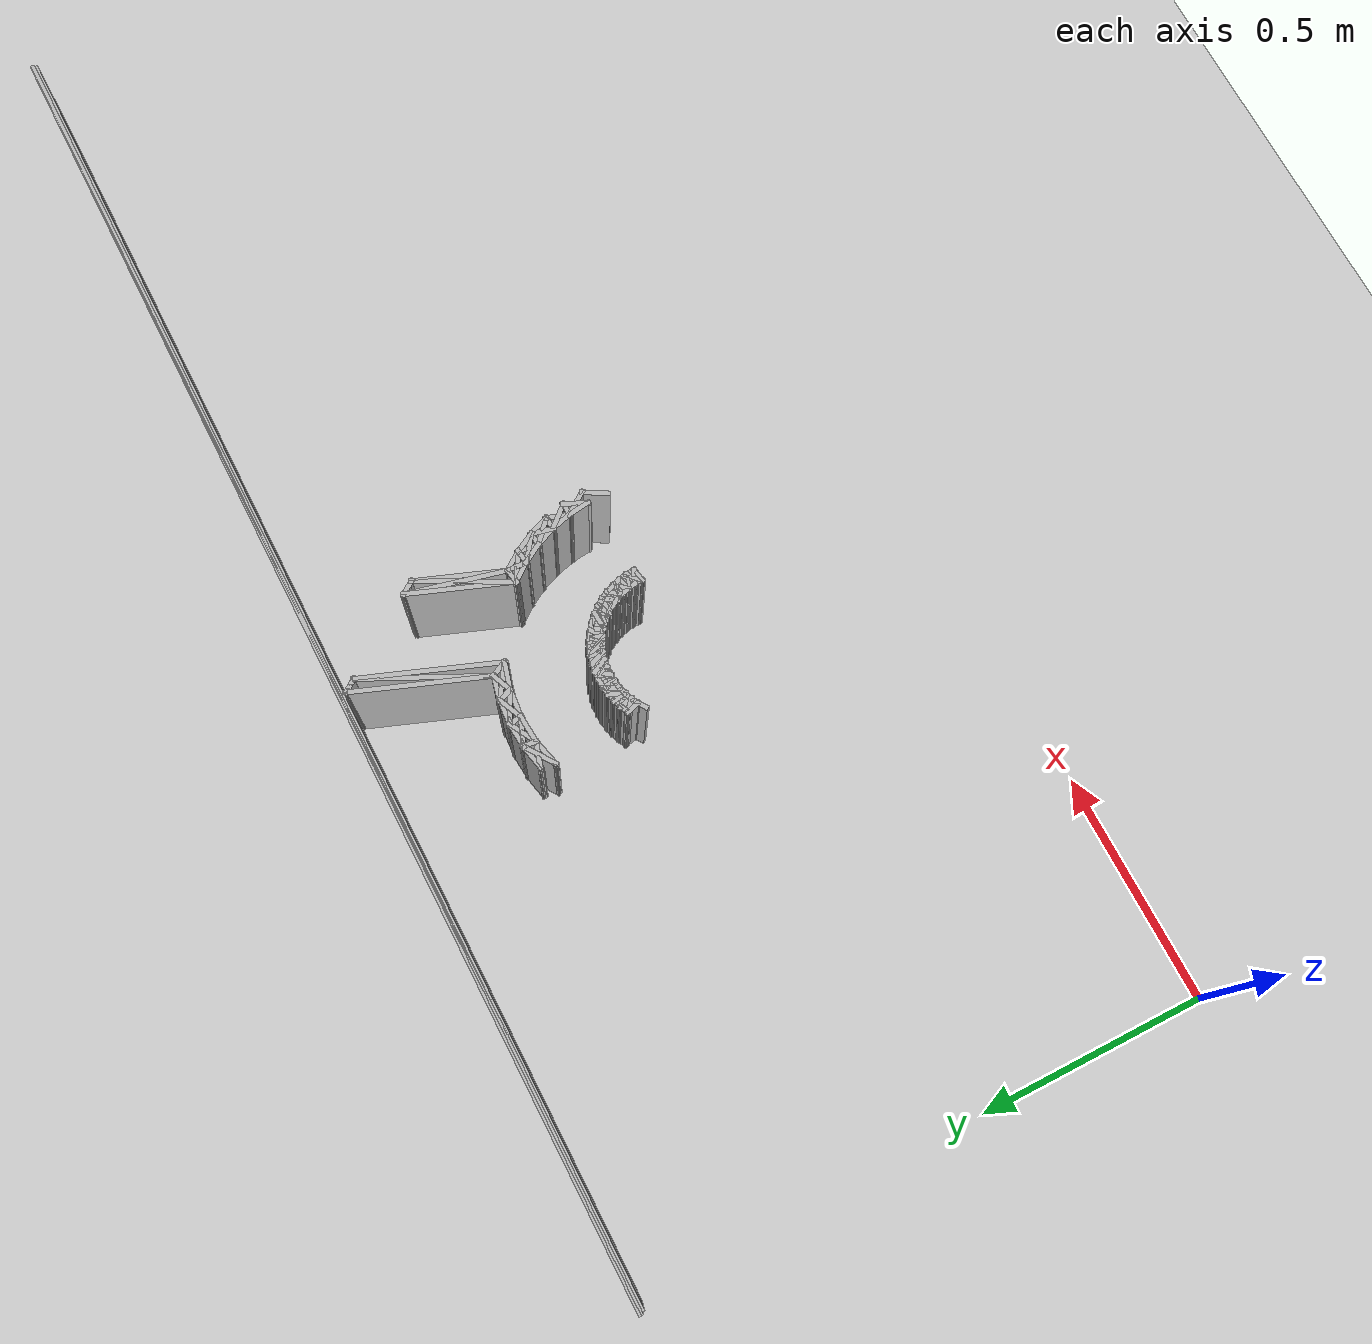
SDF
<sdf version="1.8">
 <world name="rosy_road">
  <model name="ground_plane">
   <link name="l">
    <visual name="v"><geometry><plane><normal>0 0 1</normal><size>4 2</size></plane></geometry></visual>
    <collision name="v"><geometry><plane><normal>0 0 1</normal><size>4 2</size></plane></geometry></collision>
   </link>
  </model>
  <model name="walls">
   <static>true</static>
   <link name="wall_005">
    <pose>1.4025 1.2701 0.150 0 0 -0.0018</pose>
    <visual name="v"><geometry><box><size>2.8171 0.0100 0.300</size></box></geometry></visual>
    <collision name="c"><geometry><box><size>2.8171 0.0100 0.300</size></box></geometry></collision>
   </link>
   <link name="wall_006">
    <pose>1.4050 1.2676 0.150 0 0 3.1416</pose>
    <visual name="v"><geometry><box><size>2.8121 0.0100 0.300</size></box></geometry></visual>
    <collision name="c"><geometry><box><size>2.8121 0.0100 0.300</size></box></geometry></collision>
   </link>
   <link name="wall_012">
    <pose>1.4050 1.2726 0.150 0 0 0.0000</pose>
    <visual name="v"><geometry><box><size>2.8221 0.0100 0.300</size></box></geometry></visual>
    <collision name="c"><geometry><box><size>2.8221 0.0100 0.300</size></box></geometry></collision>
   </link>
   <link name="wall_013">
    <pose>1.4075 1.2701 0.150 0 0 -3.1398</pose>
    <visual name="v"><geometry><box><size>2.8171 0.0100 0.300</size></box></geometry></visual>
    <collision name="c"><geometry><box><size>2.8171 0.0100 0.300</size></box></geometry></collision>
   </link>
   <link name="wall_062">
    <pose>0.9921 0.9805 0.150 0 0 -0.2941</pose>
    <visual name="v"><geometry><box><size>0.0624 0.0100 0.300</size></box></geometry></visual>
    <collision name="c"><geometry><box><size>0.0624 0.0100 0.300</size></box></geometry></collision>
   </link>
   <link name="wall_063">
    <pose>0.9885 0.9663 0.150 0 0 -2.8953</pose>
    <visual name="v"><geometry><box><size>0.0690 0.0100 0.300</size></box></geometry></visual>
    <collision name="c"><geometry><box><size>0.0690 0.0100 0.300</size></box></geometry></collision>
   </link>
   <link name="wall_064">
    <pose>0.9894 0.9790 0.150 0 0 0.6060</pose>
    <visual name="v"><geometry><box><size>0.0813 0.0100 0.300</size></box></geometry></visual>
    <collision name="c"><geometry><box><size>0.0813 0.0100 0.300</size></box></geometry></collision>
   </link>
   <link name="wall_065">
    <pose>0.9929 0.9933 0.150 0 0 -2.9246</pose>
    <visual name="v"><geometry><box><size>0.0631 0.0100 0.300</size></box></geometry></visual>
    <collision name="c"><geometry><box><size>0.0631 0.0100 0.300</size></box></geometry></collision>
   </link>
   <link name="wall_071">
    <pose>1.0171 0.9860 0.150 0 0 1.5045</pose>
    <visual name="v"><geometry><box><size>0.0377 0.0100 0.300</size></box></geometry></visual>
    <collision name="c"><geometry><box><size>0.0377 0.0100 0.300</size></box></geometry></collision>
   </link>
   <link name="wall_072">
    <pose>1.0434 1.0007 0.150 0 0 0.0723</pose>
    <visual name="v"><geometry><box><size>0.0632 0.0100 0.300</size></box></geometry></visual>
    <collision name="c"><geometry><box><size>0.0632 0.0100 0.300</size></box></geometry></collision>
   </link>
   <link name="wall_073">
    <pose>1.0426 0.9879 0.150 0 0 -2.6350</pose>
    <visual name="v"><geometry><box><size>0.0724 0.0100 0.300</size></box></geometry></visual>
    <collision name="c"><geometry><box><size>0.0724 0.0100 0.300</size></box></geometry></collision>
   </link>
   <link name="wall_074">
    <pose>1.0447 0.9754 0.150 0 0 0.0753</pose>
    <visual name="v"><geometry><box><size>0.0692 0.0100 0.300</size></box></geometry></visual>
    <collision name="c"><geometry><box><size>0.0692 0.0100 0.300</size></box></geometry></collision>
   </link>
   <link name="wall_075">
    <pose>1.0455 0.9881 0.150 0 0 2.7739</pose>
    <visual name="v"><geometry><box><size>0.0713 0.0100 0.300</size></box></geometry></visual>
    <collision name="c"><geometry><box><size>0.0713 0.0100 0.300</size></box></geometry></collision>
   </link>
   <link name="wall_081">
    <pose>1.0711 0.9900 0.150 0 0 -1.4044</pose>
    <visual name="v"><geometry><box><size>0.0374 0.0100 0.300</size></box></geometry></visual>
    <collision name="c"><geometry><box><size>0.0374 0.0100 0.300</size></box></geometry></collision>
   </link>
   <link name="wall_082">
    <pose>1.0966 0.9883 0.150 0 0 0.4324</pose>
    <visual name="v"><geometry><box><size>0.0635 0.0100 0.300</size></box></geometry></visual>
    <collision name="c"><geometry><box><size>0.0635 0.0100 0.300</size></box></geometry></collision>
   </link>
   <link name="wall_083">
    <pose>1.0945 1.0008 0.150 0 0 3.0750</pose>
    <visual name="v"><geometry><box><size>0.0631 0.0100 0.300</size></box></geometry></visual>
    <collision name="c"><geometry><box><size>0.0631 0.0100 0.300</size></box></geometry></collision>
   </link>
   <link name="wall_084">
    <pose>1.0995 0.9873 0.150 0 0 -0.4623</pose>
    <visual name="v"><geometry><box><size>0.0802 0.0100 0.300</size></box></geometry></visual>
    <collision name="c"><geometry><box><size>0.0802 0.0100 0.300</size></box></geometry></collision>
   </link>
   <link name="wall_085">
    <pose>1.1016 0.9748 0.150 0 0 3.0468</pose>
    <visual name="v"><geometry><box><size>0.0691 0.0100 0.300</size></box></geometry></visual>
    <collision name="c"><geometry><box><size>0.0691 0.0100 0.300</size></box></geometry></collision>
   </link>
   <link name="wall_091">
    <pose>1.1250 0.9856 0.150 0 0 -1.2161</pose>
    <visual name="v"><geometry><box><size>0.0408 0.0100 0.300</size></box></geometry></visual>
    <collision name="c"><geometry><box><size>0.0408 0.0100 0.300</size></box></geometry></collision>
   </link>
   <link name="wall_092">
    <pose>1.1501 0.9802 0.150 0 0 0.3861</pose>
    <visual name="v"><geometry><box><size>0.0553 0.0100 0.300</size></box></geometry></visual>
    <collision name="c"><geometry><box><size>0.0553 0.0100 0.300</size></box></geometry></collision>
   </link>
   <link name="wall_093">
    <pose>1.1450 0.9938 0.150 0 0 2.9312</pose>
    <visual name="v"><geometry><box><size>0.0632 0.0100 0.300</size></box></geometry></visual>
    <collision name="c"><geometry><box><size>0.0632 0.0100 0.300</size></box></geometry></collision>
   </link>
   <link name="wall_094">
    <pose>1.1525 0.9782 0.150 0 0 -0.5719</pose>
    <visual name="v"><geometry><box><size>0.0894 0.0100 0.300</size></box></geometry></visual>
    <collision name="c"><geometry><box><size>0.0894 0.0100 0.300</size></box></geometry></collision>
   </link>
   <link name="wall_095">
    <pose>1.1575 0.9647 0.150 0 0 2.8775</pose>
    <visual name="v"><geometry><box><size>0.0691 0.0100 0.300</size></box></geometry></visual>
    <collision name="c"><geometry><box><size>0.0691 0.0100 0.300</size></box></geometry></collision>
   </link>
   <link name="wall_101">
    <pose>1.1776 0.9728 0.150 0 0 -1.1227</pose>
    <visual name="v"><geometry><box><size>0.0466 0.0100 0.300</size></box></geometry></visual>
    <collision name="c"><geometry><box><size>0.0466 0.0100 0.300</size></box></geometry></collision>
   </link>
   <link name="wall_102">
    <pose>1.2363 1.0949 0.150 0 0 1.2151</pose>
    <visual name="v"><geometry><box><size>0.3058 0.0100 0.300</size></box></geometry></visual>
    <collision name="c"><geometry><box><size>0.3058 0.0100 0.300</size></box></geometry></collision>
   </link>
   <link name="wall_103">
    <pose>1.2288 1.1105 0.150 0 0 -2.0186</pose>
    <visual name="v"><geometry><box><size>0.2829 0.0100 0.300</size></box></geometry></visual>
    <collision name="c"><geometry><box><size>0.2829 0.0100 0.300</size></box></geometry></collision>
   </link>
   <link name="wall_104">
    <pose>1.2200 1.1230 0.150 0 0 1.2153</pose>
    <visual name="v"><geometry><box><size>0.2990 0.0100 0.300</size></box></geometry></visual>
    <collision name="c"><geometry><box><size>0.2990 0.0100 0.300</size></box></geometry></collision>
   </link>
   <link name="wall_105">
    <pose>1.2787 1.2450 0.150 0 0 -0.9609</pose>
    <visual name="v"><geometry><box><size>0.0424 0.0100 0.300</size></box></geometry></visual>
    <collision name="c"><geometry><box><size>0.0424 0.0100 0.300</size></box></geometry></collision>
   </link>
   <link name="wall_110">
    <pose>1.2787 1.2450 0.150 0 0 2.1807</pose>
    <visual name="v"><geometry><box><size>0.0424 0.0100 0.300</size></box></geometry></visual>
    <collision name="c"><geometry><box><size>0.0424 0.0100 0.300</size></box></geometry></collision>
   </link>
   <link name="wall_499">
    <pose>0.9877 0.7586 0.150 0 0 0.6159</pose>
    <visual name="v"><geometry><box><size>0.0279 0.0100 0.300</size></box></geometry></visual>
    <collision name="c"><geometry><box><size>0.0279 0.0100 0.300</size></box></geometry></collision>
   </link>
   <link name="wall_502">
    <pose>0.9909 0.7758 0.150 0 0 -1.3099</pose>
    <visual name="v"><geometry><box><size>0.0380 0.0100 0.300</size></box></geometry></visual>
    <collision name="c"><geometry><box><size>0.0380 0.0100 0.300</size></box></geometry></collision>
   </link>
   <link name="wall_503">
    <pose>0.9986 0.7796 0.150 0 0 1.3087</pose>
    <visual name="v"><geometry><box><size>0.0460 0.0100 0.300</size></box></geometry></visual>
    <collision name="c"><geometry><box><size>0.0460 0.0100 0.300</size></box></geometry></collision>
   </link>
   <link name="wall_504">
    <pose>0.9952 0.7922 0.150 0 0 -2.6805</pose>
    <visual name="v"><geometry><box><size>0.0293 0.0100 0.300</size></box></geometry></visual>
    <collision name="c"><geometry><box><size>0.0293 0.0100 0.300</size></box></geometry></collision>
   </link>
   <link name="wall_505">
    <pose>0.9979 0.7796 0.150 0 0 -0.6990</pose>
    <visual name="v"><geometry><box><size>0.0390 0.0100 0.300</size></box></geometry></visual>
    <collision name="c"><geometry><box><size>0.0390 0.0100 0.300</size></box></geometry></collision>
   </link>
   <link name="wall_506">
    <pose>1.0012 0.7671 0.150 0 0 -2.6387</pose>
    <visual name="v"><geometry><box><size>0.0280 0.0100 0.300</size></box></geometry></visual>
    <collision name="c"><geometry><box><size>0.0280 0.0100 0.300</size></box></geometry></collision>
   </link>
   <link name="wall_517">
    <pose>1.0056 0.7835 0.150 0 0 -1.3665</pose>
    <visual name="v"><geometry><box><size>0.0376 0.0100 0.300</size></box></geometry></visual>
    <collision name="c"><geometry><box><size>0.0376 0.0100 0.300</size></box></geometry></collision>
   </link>
   <link name="wall_518">
    <pose>1.0137 0.7865 0.150 0 0 1.2347</pose>
    <visual name="v"><geometry><box><size>0.0450 0.0100 0.300</size></box></geometry></visual>
    <collision name="c"><geometry><box><size>0.0450 0.0100 0.300</size></box></geometry></collision>
   </link>
   <link name="wall_519">
    <pose>1.0111 0.7990 0.150 0 0 -2.7794</pose>
    <visual name="v"><geometry><box><size>0.0292 0.0100 0.300</size></box></geometry></visual>
    <collision name="c"><geometry><box><size>0.0292 0.0100 0.300</size></box></geometry></collision>
   </link>
   <link name="wall_520">
    <pose>1.0130 0.7865 0.150 0 0 -0.7571</pose>
    <visual name="v"><geometry><box><size>0.0395 0.0100 0.300</size></box></geometry></visual>
    <collision name="c"><geometry><box><size>0.0395 0.0100 0.300</size></box></geometry></collision>
   </link>
   <link name="wall_521">
    <pose>1.0156 0.7740 0.150 0 0 -2.7449</pose>
    <visual name="v"><geometry><box><size>0.0280 0.0100 0.300</size></box></geometry></visual>
    <collision name="c"><geometry><box><size>0.0280 0.0100 0.300</size></box></geometry></collision>
   </link>
   <link name="wall_527">
    <pose>1.0211 0.7896 0.150 0 0 -1.4160</pose>
    <visual name="v"><geometry><box><size>0.0373 0.0100 0.300</size></box></geometry></visual>
    <collision name="c"><geometry><box><size>0.0373 0.0100 0.300</size></box></geometry></collision>
   </link>
   <link name="wall_528">
    <pose>1.0294 0.7918 0.150 0 0 1.1602</pose>
    <visual name="v"><geometry><box><size>0.0441 0.0100 0.300</size></box></geometry></visual>
    <collision name="c"><geometry><box><size>0.0441 0.0100 0.300</size></box></geometry></collision>
   </link>
   <link name="wall_529">
    <pose>1.0274 0.8043 0.150 0 0 -2.8840</pose>
    <visual name="v"><geometry><box><size>0.0293 0.0100 0.300</size></box></geometry></visual>
    <collision name="c"><geometry><box><size>0.0293 0.0100 0.300</size></box></geometry></collision>
   </link>
   <link name="wall_530">
    <pose>1.0287 0.7918 0.150 0 0 -0.8206</pose>
    <visual name="v"><geometry><box><size>0.0402 0.0100 0.300</size></box></geometry></visual>
    <collision name="c"><geometry><box><size>0.0402 0.0100 0.300</size></box></geometry></collision>
   </link>
   <link name="wall_531">
    <pose>1.0307 0.7793 0.150 0 0 -2.8616</pose>
    <visual name="v"><geometry><box><size>0.0279 0.0100 0.300</size></box></geometry></visual>
    <collision name="c"><geometry><box><size>0.0279 0.0100 0.300</size></box></geometry></collision>
   </link>
   <link name="wall_537">
    <pose>1.0371 0.7940 0.150 0 0 -1.4711</pose>
    <visual name="v"><geometry><box><size>0.0371 0.0100 0.300</size></box></geometry></visual>
    <collision name="c"><geometry><box><size>0.0371 0.0100 0.300</size></box></geometry></collision>
   </link>
   <link name="wall_538">
    <pose>1.0455 0.7954 0.150 0 0 1.0886</pose>
    <visual name="v"><geometry><box><size>0.0433 0.0100 0.300</size></box></geometry></visual>
    <collision name="c"><geometry><box><size>0.0433 0.0100 0.300</size></box></geometry></collision>
   </link>
   <link name="wall_539">
    <pose>1.0443 0.8079 0.150 0 0 -2.9841</pose>
    <visual name="v"><geometry><box><size>0.0292 0.0100 0.300</size></box></geometry></visual>
    <collision name="c"><geometry><box><size>0.0292 0.0100 0.300</size></box></geometry></collision>
   </link>
   <link name="wall_540">
    <pose>1.0449 0.7954 0.150 0 0 -0.8836</pose>
    <visual name="v"><geometry><box><size>0.0408 0.0100 0.300</size></box></geometry></visual>
    <collision name="c"><geometry><box><size>0.0408 0.0100 0.300</size></box></geometry></collision>
   </link>
   <link name="wall_541">
    <pose>1.0462 0.7829 0.150 0 0 -2.9723</pose>
    <visual name="v"><geometry><box><size>0.0280 0.0100 0.300</size></box></geometry></visual>
    <collision name="c"><geometry><box><size>0.0280 0.0100 0.300</size></box></geometry></collision>
   </link>
   <link name="wall_551">
    <pose>1.0534 0.7967 0.150 0 0 -1.5188</pose>
    <visual name="v"><geometry><box><size>0.0370 0.0100 0.300</size></box></geometry></visual>
    <collision name="c"><geometry><box><size>0.0370 0.0100 0.300</size></box></geometry></collision>
   </link>
   <link name="wall_552">
    <pose>1.0621 0.7846 0.150 0 0 0.0500</pose>
    <visual name="v"><geometry><box><size>0.0280 0.0100 0.300</size></box></geometry></visual>
    <collision name="c"><geometry><box><size>0.0280 0.0100 0.300</size></box></geometry></collision>
   </link>
   <link name="wall_553">
    <pose>1.0614 0.7971 0.150 0 0 2.1914</pose>
    <visual name="v"><geometry><box><size>0.0417 0.0100 0.300</size></box></geometry></visual>
    <collision name="c"><geometry><box><size>0.0417 0.0100 0.300</size></box></geometry></collision>
   </link>
   <link name="wall_554">
    <pose>1.0614 0.8096 0.150 0 0 0.0462</pose>
    <visual name="v"><geometry><box><size>0.0293 0.0100 0.300</size></box></geometry></visual>
    <collision name="c"><geometry><box><size>0.0293 0.0100 0.300</size></box></geometry></collision>
   </link>
   <link name="wall_555">
    <pose>1.0621 0.7971 0.150 0 0 -2.1259</pose>
    <visual name="v"><geometry><box><size>0.0424 0.0100 0.300</size></box></geometry></visual>
    <collision name="c"><geometry><box><size>0.0424 0.0100 0.300</size></box></geometry></collision>
   </link>
   <link name="wall_564">
    <pose>1.0701 0.7975 0.150 0 0 1.5708</pose>
    <visual name="v"><geometry><box><size>0.0370 0.0100 0.300</size></box></geometry></visual>
    <collision name="c"><geometry><box><size>0.0370 0.0100 0.300</size></box></geometry></collision>
   </link>
   <link name="wall_565">
    <pose>1.0780 0.7971 0.150 0 0 -1.0185</pose>
    <visual name="v"><geometry><box><size>0.0423 0.0100 0.300</size></box></geometry></visual>
    <collision name="c"><geometry><box><size>0.0423 0.0100 0.300</size></box></geometry></collision>
   </link>
   <link name="wall_566">
    <pose>1.0780 0.7846 0.150 0 0 3.0913</pose>
    <visual name="v"><geometry><box><size>0.0279 0.0100 0.300</size></box></geometry></visual>
    <collision name="c"><geometry><box><size>0.0279 0.0100 0.300</size></box></geometry></collision>
   </link>
   <link name="wall_567">
    <pose>1.0787 0.7971 0.150 0 0 0.9529</pose>
    <visual name="v"><geometry><box><size>0.0417 0.0100 0.300</size></box></geometry></visual>
    <collision name="c"><geometry><box><size>0.0417 0.0100 0.300</size></box></geometry></collision>
   </link>
   <link name="wall_568">
    <pose>1.0787 0.8096 0.150 0 0 3.0951</pose>
    <visual name="v"><geometry><box><size>0.0292 0.0100 0.300</size></box></geometry></visual>
    <collision name="c"><geometry><box><size>0.0292 0.0100 0.300</size></box></geometry></collision>
   </link>
   <link name="wall_569">
    <pose>1.0867 0.7967 0.150 0 0 1.5188</pose>
    <visual name="v"><geometry><box><size>0.0370 0.0100 0.300</size></box></geometry></visual>
    <collision name="c"><geometry><box><size>0.0370 0.0100 0.300</size></box></geometry></collision>
   </link>
   <link name="wall_570">
    <pose>1.0945 0.7954 0.150 0 0 -1.0886</pose>
    <visual name="v"><geometry><box><size>0.0433 0.0100 0.300</size></box></geometry></visual>
    <collision name="c"><geometry><box><size>0.0433 0.0100 0.300</size></box></geometry></collision>
   </link>
   <link name="wall_571">
    <pose>1.0939 0.7829 0.150 0 0 2.9723</pose>
    <visual name="v"><geometry><box><size>0.0280 0.0100 0.300</size></box></geometry></visual>
    <collision name="c"><geometry><box><size>0.0280 0.0100 0.300</size></box></geometry></collision>
   </link>
   <link name="wall_572">
    <pose>1.0952 0.7954 0.150 0 0 0.8836</pose>
    <visual name="v"><geometry><box><size>0.0408 0.0100 0.300</size></box></geometry></visual>
    <collision name="c"><geometry><box><size>0.0408 0.0100 0.300</size></box></geometry></collision>
   </link>
   <link name="wall_573">
    <pose>1.0958 0.8079 0.150 0 0 2.9841</pose>
    <visual name="v"><geometry><box><size>0.0292 0.0100 0.300</size></box></geometry></visual>
    <collision name="c"><geometry><box><size>0.0292 0.0100 0.300</size></box></geometry></collision>
   </link>
   <link name="wall_579">
    <pose>1.1030 0.7940 0.150 0 0 1.4711</pose>
    <visual name="v"><geometry><box><size>0.0371 0.0100 0.300</size></box></geometry></visual>
    <collision name="c"><geometry><box><size>0.0371 0.0100 0.300</size></box></geometry></collision>
   </link>
   <link name="wall_580">
    <pose>1.1107 0.7918 0.150 0 0 -1.1602</pose>
    <visual name="v"><geometry><box><size>0.0441 0.0100 0.300</size></box></geometry></visual>
    <collision name="c"><geometry><box><size>0.0441 0.0100 0.300</size></box></geometry></collision>
   </link>
   <link name="wall_581">
    <pose>1.1094 0.7793 0.150 0 0 2.8616</pose>
    <visual name="v"><geometry><box><size>0.0279 0.0100 0.300</size></box></geometry></visual>
    <collision name="c"><geometry><box><size>0.0279 0.0100 0.300</size></box></geometry></collision>
   </link>
   <link name="wall_582">
    <pose>1.1114 0.7918 0.150 0 0 0.8206</pose>
    <visual name="v"><geometry><box><size>0.0402 0.0100 0.300</size></box></geometry></visual>
    <collision name="c"><geometry><box><size>0.0402 0.0100 0.300</size></box></geometry></collision>
   </link>
   <link name="wall_583">
    <pose>1.1127 0.8043 0.150 0 0 2.8840</pose>
    <visual name="v"><geometry><box><size>0.0293 0.0100 0.300</size></box></geometry></visual>
    <collision name="c"><geometry><box><size>0.0293 0.0100 0.300</size></box></geometry></collision>
   </link>
   <link name="wall_589">
    <pose>1.1190 0.7896 0.150 0 0 1.4160</pose>
    <visual name="v"><geometry><box><size>0.0373 0.0100 0.300</size></box></geometry></visual>
    <collision name="c"><geometry><box><size>0.0373 0.0100 0.300</size></box></geometry></collision>
   </link>
   <link name="wall_590">
    <pose>1.1264 0.7865 0.150 0 0 -1.2347</pose>
    <visual name="v"><geometry><box><size>0.0450 0.0100 0.300</size></box></geometry></visual>
    <collision name="c"><geometry><box><size>0.0450 0.0100 0.300</size></box></geometry></collision>
   </link>
   <link name="wall_591">
    <pose>1.1245 0.7740 0.150 0 0 2.7449</pose>
    <visual name="v"><geometry><box><size>0.0280 0.0100 0.300</size></box></geometry></visual>
    <collision name="c"><geometry><box><size>0.0280 0.0100 0.300</size></box></geometry></collision>
   </link>
   <link name="wall_592">
    <pose>1.1271 0.7865 0.150 0 0 0.7571</pose>
    <visual name="v"><geometry><box><size>0.0395 0.0100 0.300</size></box></geometry></visual>
    <collision name="c"><geometry><box><size>0.0395 0.0100 0.300</size></box></geometry></collision>
   </link>
   <link name="wall_593">
    <pose>1.1290 0.7990 0.150 0 0 2.7794</pose>
    <visual name="v"><geometry><box><size>0.0292 0.0100 0.300</size></box></geometry></visual>
    <collision name="c"><geometry><box><size>0.0292 0.0100 0.300</size></box></geometry></collision>
   </link>
   <link name="wall_599">
    <pose>1.1345 0.7835 0.150 0 0 1.3665</pose>
    <visual name="v"><geometry><box><size>0.0376 0.0100 0.300</size></box></geometry></visual>
    <collision name="c"><geometry><box><size>0.0376 0.0100 0.300</size></box></geometry></collision>
   </link>
   <link name="wall_600">
    <pose>1.1415 0.7796 0.150 0 0 -1.3087</pose>
    <visual name="v"><geometry><box><size>0.0460 0.0100 0.300</size></box></geometry></visual>
    <collision name="c"><geometry><box><size>0.0460 0.0100 0.300</size></box></geometry></collision>
   </link>
   <link name="wall_601">
    <pose>1.1389 0.7671 0.150 0 0 2.6387</pose>
    <visual name="v"><geometry><box><size>0.0280 0.0100 0.300</size></box></geometry></visual>
    <collision name="c"><geometry><box><size>0.0280 0.0100 0.300</size></box></geometry></collision>
   </link>
   <link name="wall_602">
    <pose>1.1422 0.7796 0.150 0 0 0.6990</pose>
    <visual name="v"><geometry><box><size>0.0390 0.0100 0.300</size></box></geometry></visual>
    <collision name="c"><geometry><box><size>0.0390 0.0100 0.300</size></box></geometry></collision>
   </link>
   <link name="wall_603">
    <pose>1.1448 0.7922 0.150 0 0 2.6805</pose>
    <visual name="v"><geometry><box><size>0.0293 0.0100 0.300</size></box></geometry></visual>
    <collision name="c"><geometry><box><size>0.0293 0.0100 0.300</size></box></geometry></collision>
   </link>
   <link name="wall_609">
    <pose>1.1493 0.7758 0.150 0 0 1.3099</pose>
    <visual name="v"><geometry><box><size>0.0380 0.0100 0.300</size></box></geometry></visual>
    <collision name="c"><geometry><box><size>0.0380 0.0100 0.300</size></box></geometry></collision>
   </link>
   <link name="wall_610">
    <pose>1.1598 0.7837 0.150 0 0 -0.5654</pose>
    <visual name="v"><geometry><box><size>0.0292 0.0100 0.300</size></box></geometry></visual>
    <collision name="c"><geometry><box><size>0.0292 0.0100 0.300</size></box></geometry></collision>
   </link>
   <link name="wall_611">
    <pose>1.1565 0.7712 0.150 0 0 -2.4981</pose>
    <visual name="v"><geometry><box><size>0.0385 0.0100 0.300</size></box></geometry></visual>
    <collision name="c"><geometry><box><size>0.0385 0.0100 0.300</size></box></geometry></collision>
   </link>
   <link name="wall_612">
    <pose>1.1524 0.7586 0.150 0 0 -0.6159</pose>
    <visual name="v"><geometry><box><size>0.0279 0.0100 0.300</size></box></geometry></visual>
    <collision name="c"><geometry><box><size>0.0279 0.0100 0.300</size></box></geometry></collision>
   </link>
   <link name="wall_613">
    <pose>1.1630 0.7665 0.150 0 0 1.2550</pose>
    <visual name="v"><geometry><box><size>0.0384 0.0100 0.300</size></box></geometry></visual>
    <collision name="c"><geometry><box><size>0.0384 0.0100 0.300</size></box></geometry></collision>
   </link>
   <link name="wall_614">
    <pose>1.1738 0.7738 0.150 0 0 -0.6702</pose>
    <visual name="v"><geometry><box><size>0.0292 0.0100 0.300</size></box></geometry></visual>
    <collision name="c"><geometry><box><size>0.0292 0.0100 0.300</size></box></geometry></collision>
   </link>
   <link name="wall_615">
    <pose>1.1698 0.7612 0.150 0 0 -2.5557</pose>
    <visual name="v"><geometry><box><size>0.0380 0.0100 0.300</size></box></geometry></visual>
    <collision name="c"><geometry><box><size>0.0380 0.0100 0.300</size></box></geometry></collision>
   </link>
   <link name="wall_616">
    <pose>1.1648 0.7486 0.150 0 0 -0.7324</pose>
    <visual name="v"><geometry><box><size>0.0280 0.0100 0.300</size></box></geometry></visual>
    <collision name="c"><geometry><box><size>0.0280 0.0100 0.300</size></box></geometry></collision>
   </link>
   <link name="wall_617">
    <pose>1.1757 0.7558 0.150 0 0 1.1986</pose>
    <visual name="v"><geometry><box><size>0.0389 0.0100 0.300</size></box></geometry></visual>
    <collision name="c"><geometry><box><size>0.0389 0.0100 0.300</size></box></geometry></collision>
   </link>
   <link name="wall_618">
    <pose>1.1868 0.7623 0.150 0 0 -0.7732</pose>
    <visual name="v"><geometry><box><size>0.0293 0.0100 0.300</size></box></geometry></visual>
    <collision name="c"><geometry><box><size>0.0293 0.0100 0.300</size></box></geometry></collision>
   </link>
   <link name="wall_619">
    <pose>1.1760 0.7551 0.150 0 0 -3.0742</pose>
    <visual name="v"><geometry><box><size>0.0462 0.0100 0.300</size></box></geometry></visual>
    <collision name="c"><geometry><box><size>0.0462 0.0100 0.300</size></box></geometry></collision>
   </link>
   <link name="wall_630">
    <pose>1.1762 0.7373 0.150 0 0 -0.8384</pose>
    <visual name="v"><geometry><box><size>0.0280 0.0100 0.300</size></box></geometry></visual>
    <collision name="c"><geometry><box><size>0.0280 0.0100 0.300</size></box></geometry></collision>
   </link>
   <link name="wall_631">
    <pose>1.1872 0.7438 0.150 0 0 1.1381</pose>
    <visual name="v"><geometry><box><size>0.0394 0.0100 0.300</size></box></geometry></visual>
    <collision name="c"><geometry><box><size>0.0394 0.0100 0.300</size></box></geometry></collision>
   </link>
   <link name="wall_632">
    <pose>1.1819 0.7498 0.150 0 0 -2.6118</pose>
    <visual name="v"><geometry><box><size>0.0377 0.0100 0.300</size></box></geometry></visual>
    <collision name="c"><geometry><box><size>0.0377 0.0100 0.300</size></box></geometry></collision>
   </link>
   <link name="wall_633">
    <pose>1.1874 0.7432 0.150 0 0 -0.0060</pose>
    <visual name="v"><geometry><box><size>0.0452 0.0100 0.300</size></box></geometry></visual>
    <collision name="c"><geometry><box><size>0.0452 0.0100 0.300</size></box></geometry></collision>
   </link>
   <link name="wall_634">
    <pose>1.1985 0.7497 0.150 0 0 2.2655</pose>
    <visual name="v"><geometry><box><size>0.0292 0.0100 0.300</size></box></geometry></visual>
    <collision name="c"><geometry><box><size>0.0292 0.0100 0.300</size></box></geometry></collision>
   </link>
   <link name="wall_640">
    <pose>1.1861 0.7249 0.150 0 0 -0.9549</pose>
    <visual name="v"><geometry><box><size>0.0279 0.0100 0.300</size></box></geometry></visual>
    <collision name="c"><geometry><box><size>0.0279 0.0100 0.300</size></box></geometry></collision>
   </link>
   <link name="wall_641">
    <pose>1.1973 0.7308 0.150 0 0 1.0769</pose>
    <visual name="v"><geometry><box><size>0.0401 0.0100 0.300</size></box></geometry></visual>
    <collision name="c"><geometry><box><size>0.0401 0.0100 0.300</size></box></geometry></collision>
   </link>
   <link name="wall_642">
    <pose>1.1927 0.7372 0.150 0 0 -2.6621</pose>
    <visual name="v"><geometry><box><size>0.0374 0.0100 0.300</size></box></geometry></visual>
    <collision name="c"><geometry><box><size>0.0374 0.0100 0.300</size></box></geometry></collision>
   </link>
   <link name="wall_643">
    <pose>1.1976 0.7301 0.150 0 0 -0.0806</pose>
    <visual name="v"><geometry><box><size>0.0443 0.0100 0.300</size></box></geometry></visual>
    <collision name="c"><geometry><box><size>0.0443 0.0100 0.300</size></box></geometry></collision>
   </link>
   <link name="wall_644">
    <pose>1.2088 0.7359 0.150 0 0 2.1668</pose>
    <visual name="v"><geometry><box><size>0.0293 0.0100 0.300</size></box></geometry></visual>
    <collision name="c"><geometry><box><size>0.0293 0.0100 0.300</size></box></geometry></collision>
   </link>
   <link name="wall_650">
    <pose>1.1946 0.7114 0.150 0 0 -1.0680</pose>
    <visual name="v"><geometry><box><size>0.0280 0.0100 0.300</size></box></geometry></visual>
    <collision name="c"><geometry><box><size>0.0280 0.0100 0.300</size></box></geometry></collision>
   </link>
   <link name="wall_651">
    <pose>1.2061 0.7166 0.150 0 0 1.0107</pose>
    <visual name="v"><geometry><box><size>0.0408 0.0100 0.300</size></box></geometry></visual>
    <collision name="c"><geometry><box><size>0.0408 0.0100 0.300</size></box></geometry></collision>
   </link>
   <link name="wall_652">
    <pose>1.2022 0.7236 0.150 0 0 -2.7169</pose>
    <visual name="v"><geometry><box><size>0.0372 0.0100 0.300</size></box></geometry></visual>
    <collision name="c"><geometry><box><size>0.0372 0.0100 0.300</size></box></geometry></collision>
   </link>
   <link name="wall_653">
    <pose>1.2063 0.7160 0.150 0 0 -0.1531</pose>
    <visual name="v"><geometry><box><size>0.0435 0.0100 0.300</size></box></geometry></visual>
    <collision name="c"><geometry><box><size>0.0435 0.0100 0.300</size></box></geometry></collision>
   </link>
   <link name="wall_654">
    <pose>1.2178 0.7212 0.150 0 0 2.0604</pose>
    <visual name="v"><geometry><box><size>0.0292 0.0100 0.300</size></box></geometry></visual>
    <collision name="c"><geometry><box><size>0.0292 0.0100 0.300</size></box></geometry></collision>
   </link>
   <link name="wall_660">
    <pose>1.2015 0.6970 0.150 0 0 -1.1741</pose>
    <visual name="v"><geometry><box><size>0.0280 0.0100 0.300</size></box></geometry></visual>
    <collision name="c"><geometry><box><size>0.0280 0.0100 0.300</size></box></geometry></collision>
   </link>
   <link name="wall_661">
    <pose>1.2132 0.7016 0.150 0 0 0.9490</pose>
    <visual name="v"><geometry><box><size>0.0415 0.0100 0.300</size></box></geometry></visual>
    <collision name="c"><geometry><box><size>0.0415 0.0100 0.300</size></box></geometry></collision>
   </link>
   <link name="wall_662">
    <pose>1.2101 0.7090 0.150 0 0 -2.7670</pose>
    <visual name="v"><geometry><box><size>0.0371 0.0100 0.300</size></box></geometry></visual>
    <collision name="c"><geometry><box><size>0.0371 0.0100 0.300</size></box></geometry></collision>
   </link>
   <link name="wall_663">
    <pose>1.2133 0.7010 0.150 0 0 -0.2236</pose>
    <visual name="v"><geometry><box><size>0.0427 0.0100 0.300</size></box></geometry></visual>
    <collision name="c"><geometry><box><size>0.0427 0.0100 0.300</size></box></geometry></collision>
   </link>
   <link name="wall_664">
    <pose>1.2250 0.7056 0.150 0 0 1.9567</pose>
    <visual name="v"><geometry><box><size>0.0293 0.0100 0.300</size></box></geometry></visual>
    <collision name="c"><geometry><box><size>0.0293 0.0100 0.300</size></box></geometry></collision>
   </link>
   <link name="wall_673">
    <pose>1.2068 0.6820 0.150 0 0 -1.2908</pose>
    <visual name="v"><geometry><box><size>0.0279 0.0100 0.300</size></box></geometry></visual>
    <collision name="c"><geometry><box><size>0.0279 0.0100 0.300</size></box></geometry></collision>
   </link>
   <link name="wall_674">
    <pose>1.2187 0.6860 0.150 0 0 0.8790</pose>
    <visual name="v"><geometry><box><size>0.0423 0.0100 0.300</size></box></geometry></visual>
    <collision name="c"><geometry><box><size>0.0423 0.0100 0.300</size></box></geometry></collision>
   </link>
   <link name="wall_675">
    <pose>1.2164 0.6936 0.150 0 0 -2.8160</pose>
    <visual name="v"><geometry><box><size>0.0370 0.0100 0.300</size></box></geometry></visual>
    <collision name="c"><geometry><box><size>0.0370 0.0100 0.300</size></box></geometry></collision>
   </link>
   <link name="wall_676">
    <pose>1.2188 0.6853 0.150 0 0 -0.2931</pose>
    <visual name="v"><geometry><box><size>0.0418 0.0100 0.300</size></box></geometry></visual>
    <collision name="c"><geometry><box><size>0.0418 0.0100 0.300</size></box></geometry></collision>
   </link>
   <link name="wall_677">
    <pose>1.2307 0.6893 0.150 0 0 1.8523</pose>
    <visual name="v"><geometry><box><size>0.0293 0.0100 0.300</size></box></geometry></visual>
    <collision name="c"><geometry><box><size>0.0293 0.0100 0.300</size></box></geometry></collision>
   </link>
   <link name="wall_678">
    <pose>1.2103 0.6664 0.150 0 0 -1.4015</pose>
    <visual name="v"><geometry><box><size>0.0280 0.0100 0.300</size></box></geometry></visual>
    <collision name="c"><geometry><box><size>0.0280 0.0100 0.300</size></box></geometry></collision>
   </link>
   <link name="wall_679">
    <pose>1.2224 0.6697 0.150 0 0 0.8104</pose>
    <visual name="v"><geometry><box><size>0.0431 0.0100 0.300</size></box></geometry></visual>
    <collision name="c"><geometry><box><size>0.0431 0.0100 0.300</size></box></geometry></collision>
   </link>
   <link name="wall_680">
    <pose>1.2210 0.6776 0.150 0 0 -2.8704</pose>
    <visual name="v"><geometry><box><size>0.0370 0.0100 0.300</size></box></geometry></visual>
    <collision name="c"><geometry><box><size>0.0370 0.0100 0.300</size></box></geometry></collision>
   </link>
   <link name="wall_681">
    <pose>1.2226 0.6692 0.150 0 0 -0.3588</pose>
    <visual name="v"><geometry><box><size>0.0410 0.0100 0.300</size></box></geometry></visual>
    <collision name="c"><geometry><box><size>0.0410 0.0100 0.300</size></box></geometry></collision>
   </link>
   <link name="wall_682">
    <pose>1.2347 0.6725 0.150 0 0 1.7522</pose>
    <visual name="v"><geometry><box><size>0.0292 0.0100 0.300</size></box></geometry></visual>
    <collision name="c"><geometry><box><size>0.0292 0.0100 0.300</size></box></geometry></collision>
   </link>
   <link name="wall_688">
    <pose>1.2122 0.6505 0.150 0 0 -1.5146</pose>
    <visual name="v"><geometry><box><size>0.0280 0.0100 0.300</size></box></geometry></visual>
    <collision name="c"><geometry><box><size>0.0280 0.0100 0.300</size></box></geometry></collision>
   </link>
   <link name="wall_689">
    <pose>1.2244 0.6533 0.150 0 0 0.7412</pose>
    <visual name="v"><geometry><box><size>0.0440 0.0100 0.300</size></box></geometry></visual>
    <collision name="c"><geometry><box><size>0.0440 0.0100 0.300</size></box></geometry></collision>
   </link>
   <link name="wall_690">
    <pose>1.2240 0.6613 0.150 0 0 -2.9169</pose>
    <visual name="v"><geometry><box><size>0.0371 0.0100 0.300</size></box></geometry></visual>
    <collision name="c"><geometry><box><size>0.0371 0.0100 0.300</size></box></geometry></collision>
   </link>
   <link name="wall_691">
    <pose>1.2246 0.6527 0.150 0 0 -0.4225</pose>
    <visual name="v"><geometry><box><size>0.0403 0.0100 0.300</size></box></geometry></visual>
    <collision name="c"><geometry><box><size>0.0403 0.0100 0.300</size></box></geometry></collision>
   </link>
   <link name="wall_692">
    <pose>1.2369 0.6555 0.150 0 0 1.6462</pose>
    <visual name="v"><geometry><box><size>0.0292 0.0100 0.300</size></box></geometry></visual>
    <collision name="c"><geometry><box><size>0.0292 0.0100 0.300</size></box></geometry></collision>
   </link>
   <link name="wall_693">
    <pose>1.2250 0.6447 0.150 0 0 0.1749</pose>
    <visual name="v"><geometry><box><size>0.0373 0.0100 0.300</size></box></geometry></visual>
    <collision name="c"><geometry><box><size>0.0373 0.0100 0.300</size></box></geometry></collision>
   </link>
   <link name="wall_747">
    <pose>1.4168 0.6426 0.150 0 0 1.0553</pose>
    <visual name="v"><geometry><box><size>0.0629 0.0100 0.300</size></box></geometry></visual>
    <collision name="c"><geometry><box><size>0.0629 0.0100 0.300</size></box></geometry></collision>
   </link>
   <link name="wall_754">
    <pose>1.4140 0.6865 0.150 0 0 2.1880</pose>
    <visual name="v"><geometry><box><size>0.0652 0.0100 0.300</size></box></geometry></visual>
    <collision name="c"><geometry><box><size>0.0652 0.0100 0.300</size></box></geometry></collision>
   </link>
   <link name="wall_755">
    <pose>1.4014 0.6864 0.150 0 0 -1.4408</pose>
    <visual name="v"><geometry><box><size>0.0560 0.0100 0.300</size></box></geometry></visual>
    <collision name="c"><geometry><box><size>0.0560 0.0100 0.300</size></box></geometry></collision>
   </link>
   <link name="wall_756">
    <pose>1.4141 0.6868 0.150 0 0 1.1551</pose>
    <visual name="v"><geometry><box><size>0.0605 0.0100 0.300</size></box></geometry></visual>
    <collision name="c"><geometry><box><size>0.0605 0.0100 0.300</size></box></geometry></collision>
   </link>
   <link name="wall_764">
    <pose>1.4055 0.7298 0.150 0 0 2.2939</pose>
    <visual name="v"><geometry><box><size>0.0676 0.0100 0.300</size></box></geometry></visual>
    <collision name="c"><geometry><box><size>0.0676 0.0100 0.300</size></box></geometry></collision>
   </link>
   <link name="wall_765">
    <pose>1.3928 0.7295 0.150 0 0 -1.3065</pose>
    <visual name="v"><geometry><box><size>0.0560 0.0100 0.300</size></box></geometry></visual>
    <collision name="c"><geometry><box><size>0.0560 0.0100 0.300</size></box></geometry></collision>
   </link>
   <link name="wall_766">
    <pose>1.4058 0.7302 0.150 0 0 1.2566</pose>
    <visual name="v"><geometry><box><size>0.0583 0.0100 0.300</size></box></geometry></visual>
    <collision name="c"><geometry><box><size>0.0583 0.0100 0.300</size></box></geometry></collision>
   </link>
   <link name="wall_768">
    <pose>1.4112 0.7086 0.150 0 0 -3.1100</pose>
    <visual name="v"><geometry><box><size>0.0373 0.0100 0.300</size></box></geometry></visual>
    <collision name="c"><geometry><box><size>0.0373 0.0100 0.300</size></box></geometry></collision>
   </link>
   <link name="wall_774">
    <pose>1.3916 0.7718 0.150 0 0 2.4002</pose>
    <visual name="v"><geometry><box><size>0.0699 0.0100 0.300</size></box></geometry></visual>
    <collision name="c"><geometry><box><size>0.0699 0.0100 0.300</size></box></geometry></collision>
   </link>
   <link name="wall_775">
    <pose>1.3787 0.7710 0.150 0 0 -1.1764</pose>
    <visual name="v"><geometry><box><size>0.0560 0.0100 0.300</size></box></geometry></visual>
    <collision name="c"><geometry><box><size>0.0560 0.0100 0.300</size></box></geometry></collision>
   </link>
   <link name="wall_776">
    <pose>1.3919 0.7722 0.150 0 0 1.3489</pose>
    <visual name="v"><geometry><box><size>0.0561 0.0100 0.300</size></box></geometry></visual>
    <collision name="c"><geometry><box><size>0.0561 0.0100 0.300</size></box></geometry></collision>
   </link>
   <link name="wall_777">
    <pose>1.4048 0.7730 0.150 0 0 -1.2007</pose>
    <visual name="v"><geometry><box><size>0.0565 0.0100 0.300</size></box></geometry></visual>
    <collision name="c"><geometry><box><size>0.0565 0.0100 0.300</size></box></geometry></collision>
   </link>
   <link name="wall_778">
    <pose>1.4000 0.7515 0.150 0 0 -3.0835</pose>
    <visual name="v"><geometry><box><size>0.0378 0.0100 0.300</size></box></geometry></visual>
    <collision name="c"><geometry><box><size>0.0378 0.0100 0.300</size></box></geometry></collision>
   </link>
   <link name="wall_784">
    <pose>1.3724 0.8115 0.150 0 0 2.5104</pose>
    <visual name="v"><geometry><box><size>0.0723 0.0100 0.300</size></box></geometry></visual>
    <collision name="c"><geometry><box><size>0.0723 0.0100 0.300</size></box></geometry></collision>
   </link>
   <link name="wall_785">
    <pose>1.3592 0.8103 0.150 0 0 -1.0440</pose>
    <visual name="v"><geometry><box><size>0.0560 0.0100 0.300</size></box></geometry></visual>
    <collision name="c"><geometry><box><size>0.0560 0.0100 0.300</size></box></geometry></collision>
   </link>
   <link name="wall_786">
    <pose>1.3729 0.8121 0.150 0 0 1.4417</pose>
    <visual name="v"><geometry><box><size>0.0539 0.0100 0.300</size></box></geometry></visual>
    <collision name="c"><geometry><box><size>0.0539 0.0100 0.300</size></box></geometry></collision>
   </link>
   <link name="wall_787">
    <pose>1.3862 0.8133 0.150 0 0 -1.0750</pose>
    <visual name="v"><geometry><box><size>0.0566 0.0100 0.300</size></box></geometry></visual>
    <collision name="c"><geometry><box><size>0.0566 0.0100 0.300</size></box></geometry></collision>
   </link>
   <link name="wall_788">
    <pose>1.3835 0.7925 0.150 0 0 -3.0516</pose>
    <visual name="v"><geometry><box><size>0.0387 0.0100 0.300</size></box></geometry></visual>
    <collision name="c"><geometry><box><size>0.0387 0.0100 0.300</size></box></geometry></collision>
   </link>
   <link name="wall_794">
    <pose>1.3484 0.8485 0.150 0 0 2.6187</pose>
    <visual name="v"><geometry><box><size>0.0747 0.0100 0.300</size></box></geometry></visual>
    <collision name="c"><geometry><box><size>0.0747 0.0100 0.300</size></box></geometry></collision>
   </link>
   <link name="wall_795">
    <pose>1.3347 0.8468 0.150 0 0 -0.9159</pose>
    <visual name="v"><geometry><box><size>0.0560 0.0100 0.300</size></box></geometry></visual>
    <collision name="c"><geometry><box><size>0.0560 0.0100 0.300</size></box></geometry></collision>
   </link>
   <link name="wall_796">
    <pose>1.3489 0.8492 0.150 0 0 1.5282</pose>
    <visual name="v"><geometry><box><size>0.0519 0.0100 0.300</size></box></geometry></visual>
    <collision name="c"><geometry><box><size>0.0519 0.0100 0.300</size></box></geometry></collision>
   </link>
   <link name="wall_797">
    <pose>1.3627 0.8510 0.150 0 0 -0.9529</pose>
    <visual name="v"><geometry><box><size>0.0565 0.0100 0.300</size></box></geometry></visual>
    <collision name="c"><geometry><box><size>0.0565 0.0100 0.300</size></box></geometry></collision>
   </link>
   <link name="wall_798">
    <pose>1.3619 0.8311 0.150 0 0 -3.0114</pose>
    <visual name="v"><geometry><box><size>0.0397 0.0100 0.300</size></box></geometry></visual>
    <collision name="c"><geometry><box><size>0.0397 0.0100 0.300</size></box></geometry></collision>
   </link>
   <link name="wall_804">
    <pose>1.3356 0.8667 0.150 0 0 0.1737</pose>
    <visual name="v"><geometry><box><size>0.0409 0.0100 0.300</size></box></geometry></visual>
    <collision name="c"><geometry><box><size>0.0409 0.0100 0.300</size></box></geometry></collision>
   </link>
   <link name="wall_805">
    <pose>1.3742 0.9709 0.150 0 0 1.3349</pose>
    <visual name="v"><geometry><box><size>0.2212 0.0100 0.300</size></box></geometry></visual>
    <collision name="c"><geometry><box><size>0.2212 0.0100 0.300</size></box></geometry></collision>
   </link>
   <link name="wall_806">
    <pose>1.3600 0.9684 0.150 0 0 -1.9264</pose>
    <visual name="v"><geometry><box><size>0.2343 0.0100 0.300</size></box></geometry></visual>
    <collision name="c"><geometry><box><size>0.2343 0.0100 0.300</size></box></geometry></collision>
   </link>
   <link name="wall_807">
    <pose>1.3687 0.9558 0.150 0 0 1.0935</pose>
    <visual name="v"><geometry><box><size>0.2184 0.0100 0.300</size></box></geometry></visual>
    <collision name="c"><geometry><box><size>0.2184 0.0100 0.300</size></box></geometry></collision>
   </link>
   <link name="wall_808">
    <pose>1.3829 0.9584 0.150 0 0 -1.9268</pose>
    <visual name="v"><geometry><box><size>0.2022 0.0100 0.300</size></box></geometry></visual>
    <collision name="c"><geometry><box><size>0.2022 0.0100 0.300</size></box></geometry></collision>
   </link>
   <link name="wall_814">
    <pose>1.4074 1.0600 0.150 0 0 -0.9646</pose>
    <visual name="v"><geometry><box><size>0.0425 0.0100 0.300</size></box></geometry></visual>
    <collision name="c"><geometry><box><size>0.0425 0.0100 0.300</size></box></geometry></collision>
   </link>
   <link name="wall_819">
    <pose>1.4074 1.0600 0.150 0 0 2.1770</pose>
    <visual name="v"><geometry><box><size>0.0425 0.0100 0.300</size></box></geometry></visual>
    <collision name="c"><geometry><box><size>0.0425 0.0100 0.300</size></box></geometry></collision>
   </link>
  </model>
 </world>
</sdf>
